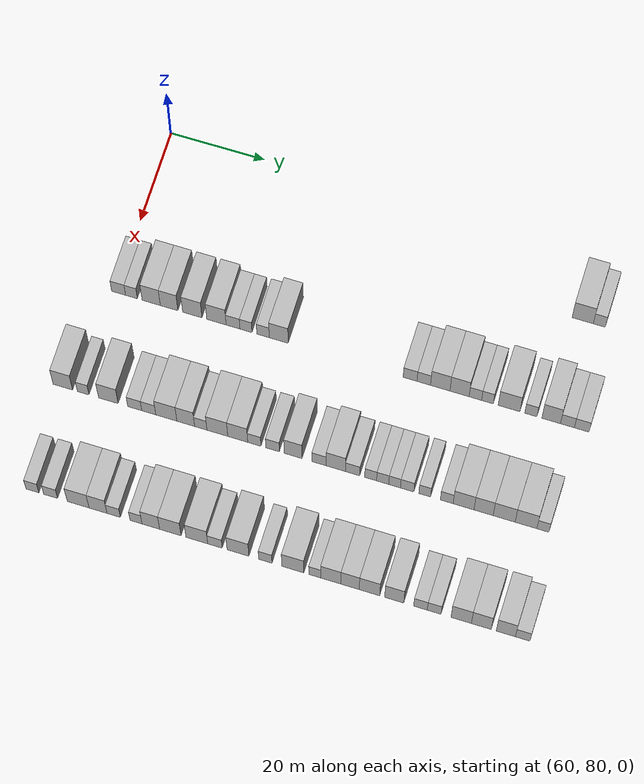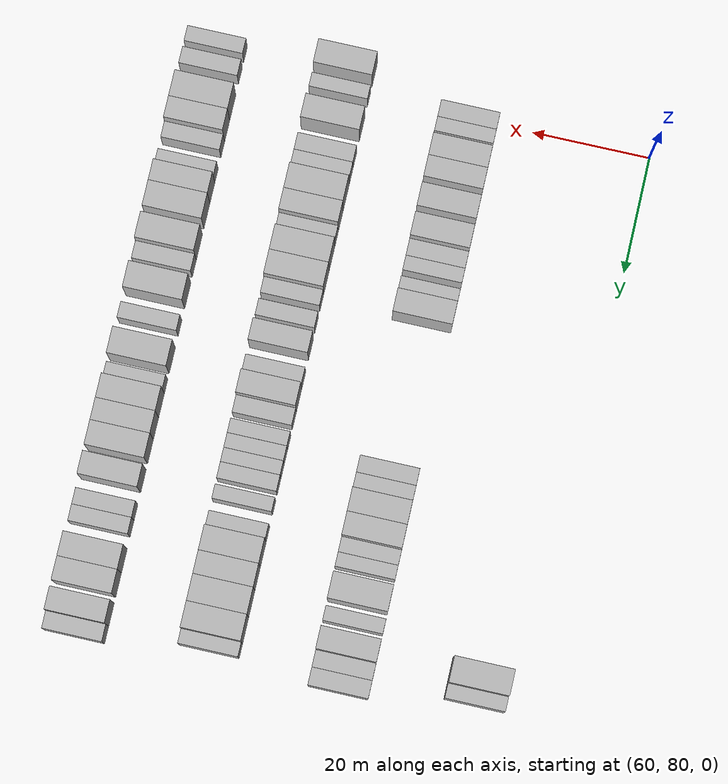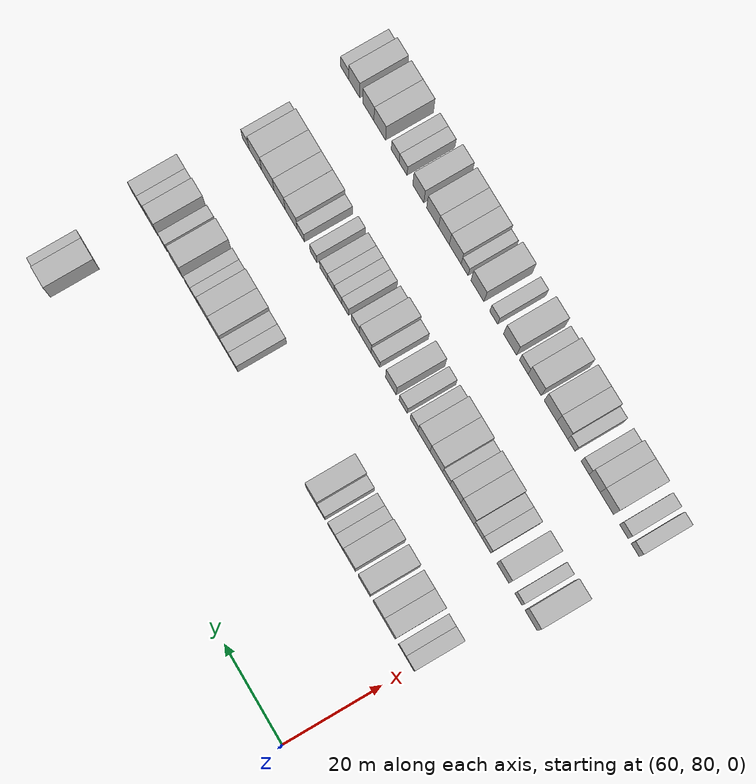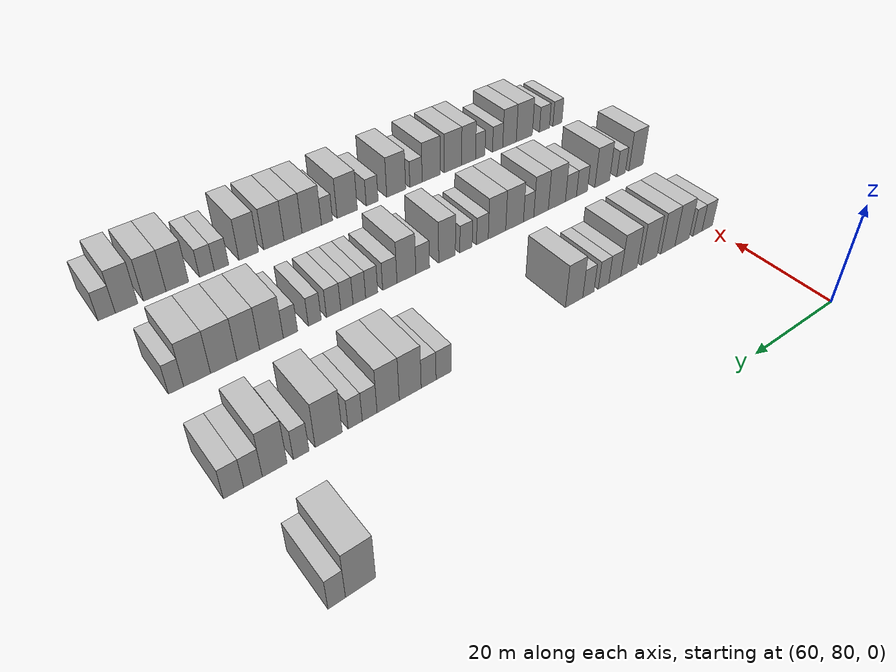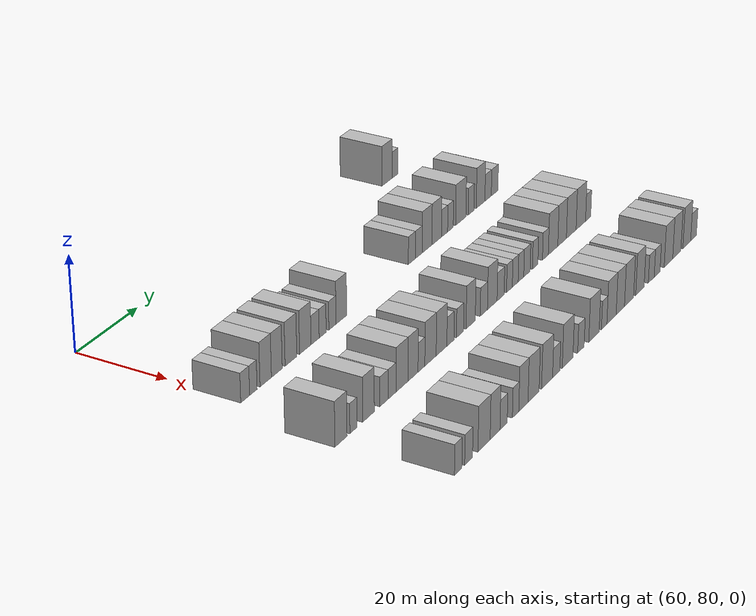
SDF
<sdf version="1.6">
 <world name="default">
  <model name="building_521">
   <static>1</static>
   <pose>69.0000 170.9131 0 0.000000 0.000000 0.000000</pose>
   <link name="link">
    <pose>0 0 4.50 0 0 0</pose>
    <collision name="collision"><geometry><box><size>10.0000 4.3863 9.0000</size></box></geometry></collision>
    <visual name="visual">
     <cast_shadows>0</cast_shadows>
     <geometry><box><size>10.0000 4.3863 9.0000</size></box></geometry>
     <material>
      <script>
       <uri>model://HANNAS_wall/materials/scripts</uri>
       <uri>model://HANNAS_wall/materials/textures</uri>
       <name>vrc/HANNAS_wall</name>
      </script>
     </material>
    </visual>
   </link>
  </model>
  <model name="building_522">
   <static>1</static>
   <pose>69.0000 174.3483 0 0.000000 0.000000 0.000000</pose>
   <link name="link">
    <pose>0 0 3.00 0 0 0</pose>
    <collision name="collision"><geometry><box><size>10.0000 2.4840 6.0000</size></box></geometry></collision>
    <visual name="visual">
     <cast_shadows>0</cast_shadows>
     <geometry><box><size>10.0000 2.4840 6.0000</size></box></geometry>
     <material>
      <script>
       <uri>model://HANNAS_wall/materials/scripts</uri>
       <uri>model://HANNAS_wall/materials/textures</uri>
       <name>vrc/HANNAS_wall</name>
      </script>
     </material>
    </visual>
   </link>
  </model>
  <model name="building_680">
   <static>1</static>
   <pose>91.0000 80.7246 0 0.000000 0.000000 0.000000</pose>
   <link name="link">
    <pose>0 0 3.00 0 0 0</pose>
    <collision name="collision"><geometry><box><size>10.0000 2.9260 6.0000</size></box></geometry></collision>
    <visual name="visual">
     <cast_shadows>0</cast_shadows>
     <geometry><box><size>10.0000 2.9260 6.0000</size></box></geometry>
     <material>
      <script>
       <uri>model://HANNAS_wall/materials/scripts</uri>
       <uri>model://HANNAS_wall/materials/textures</uri>
       <name>vrc/HANNAS_wall</name>
      </script>
     </material>
    </visual>
   </link>
  </model>
  <model name="building_681">
   <static>1</static>
   <pose>91.0000 83.4274 0 0.000000 0.000000 0.000000</pose>
   <link name="link">
    <pose>0 0 3.00 0 0 0</pose>
    <collision name="collision"><geometry><box><size>10.0000 2.4797 6.0000</size></box></geometry></collision>
    <visual name="visual">
     <cast_shadows>0</cast_shadows>
     <geometry><box><size>10.0000 2.4797 6.0000</size></box></geometry>
     <material>
      <script>
       <uri>model://HANNAS_wall/materials/scripts</uri>
       <uri>model://HANNAS_wall/materials/textures</uri>
       <name>vrc/HANNAS_wall</name>
      </script>
     </material>
    </visual>
   </link>
  </model>
  <model name="building_682">
   <static>1</static>
   <pose>91.0000 87.5861 0 0.000000 0.000000 0.000000</pose>
   <link name="link">
    <pose>0 0 4.50 0 0 0</pose>
    <collision name="collision"><geometry><box><size>10.0000 3.8378 9.0000</size></box></geometry></collision>
    <visual name="visual">
     <cast_shadows>0</cast_shadows>
     <geometry><box><size>10.0000 3.8378 9.0000</size></box></geometry>
     <material>
      <script>
       <uri>model://HANNAS_wall/materials/scripts</uri>
       <uri>model://HANNAS_wall/materials/textures</uri>
       <name>vrc/HANNAS_wall</name>
      </script>
     </material>
    </visual>
   </link>
  </model>
  <model name="building_683">
   <static>1</static>
   <pose>91.0000 91.3496 0 0.000000 0.000000 0.000000</pose>
   <link name="link">
    <pose>0 0 4.50 0 0 0</pose>
    <collision name="collision"><geometry><box><size>10.0000 3.6892 9.0000</size></box></geometry></collision>
    <visual name="visual">
     <cast_shadows>0</cast_shadows>
     <geometry><box><size>10.0000 3.6892 9.0000</size></box></geometry>
     <material>
      <script>
       <uri>model://HANNAS_wall/materials/scripts</uri>
       <uri>model://HANNAS_wall/materials/textures</uri>
       <name>vrc/HANNAS_wall</name>
      </script>
     </material>
    </visual>
   </link>
  </model>
  <model name="building_684">
   <static>1</static>
   <pose>91.0000 96.2213 0 0.000000 0.000000 0.000000</pose>
   <link name="link">
    <pose>0 0 4.50 0 0 0</pose>
    <collision name="collision"><geometry><box><size>10.0000 4.0542 9.0000</size></box></geometry></collision>
    <visual name="visual">
     <cast_shadows>0</cast_shadows>
     <geometry><box><size>10.0000 4.0542 9.0000</size></box></geometry>
     <material>
      <script>
       <uri>model://HANNAS_wall/materials/scripts</uri>
       <uri>model://HANNAS_wall/materials/textures</uri>
       <name>vrc/HANNAS_wall</name>
      </script>
     </material>
    </visual>
   </link>
  </model>
  <model name="building_685">
   <static>1</static>
   <pose>91.0000 101.2740 0 0.000000 0.000000 0.000000</pose>
   <link name="link">
    <pose>0 0 4.50 0 0 0</pose>
    <collision name="collision"><geometry><box><size>10.0000 4.0511 9.0000</size></box></geometry></collision>
    <visual name="visual">
     <cast_shadows>0</cast_shadows>
     <geometry><box><size>10.0000 4.0511 9.0000</size></box></geometry>
     <material>
      <script>
       <uri>model://HANNAS_wall/materials/scripts</uri>
       <uri>model://HANNAS_wall/materials/textures</uri>
       <name>vrc/HANNAS_wall</name>
      </script>
     </material>
    </visual>
   </link>
  </model>
  <model name="building_686">
   <static>1</static>
   <pose>91.0000 104.7477 0 0.000000 0.000000 0.000000</pose>
   <link name="link">
    <pose>0 0 3.00 0 0 0</pose>
    <collision name="collision"><geometry><box><size>10.0000 2.8964 6.0000</size></box></geometry></collision>
    <visual name="visual">
     <cast_shadows>0</cast_shadows>
     <geometry><box><size>10.0000 2.8964 6.0000</size></box></geometry>
     <material>
      <script>
       <uri>model://HANNAS_wall/materials/scripts</uri>
       <uri>model://HANNAS_wall/materials/textures</uri>
       <name>vrc/HANNAS_wall</name>
      </script>
     </material>
    </visual>
   </link>
  </model>
  <model name="building_687">
   <static>1</static>
   <pose>91.0000 107.4557 0 0.000000 0.000000 0.000000</pose>
   <link name="link">
    <pose>0 0 3.00 0 0 0</pose>
    <collision name="collision"><geometry><box><size>10.0000 2.5196 6.0000</size></box></geometry></collision>
    <visual name="visual">
     <cast_shadows>0</cast_shadows>
     <geometry><box><size>10.0000 2.5196 6.0000</size></box></geometry>
     <material>
      <script>
       <uri>model://HANNAS_wall/materials/scripts</uri>
       <uri>model://HANNAS_wall/materials/textures</uri>
       <name>vrc/HANNAS_wall</name>
      </script>
     </material>
    </visual>
   </link>
  </model>
  <model name="building_688">
   <static>1</static>
   <pose>91.0000 111.0238 0 0.000000 0.000000 0.000000</pose>
   <link name="link">
    <pose>0 0 3.00 0 0 0</pose>
    <collision name="collision"><geometry><box><size>10.0000 2.6165 6.0000</size></box></geometry></collision>
    <visual name="visual">
     <cast_shadows>0</cast_shadows>
     <geometry><box><size>10.0000 2.6165 6.0000</size></box></geometry>
     <material>
      <script>
       <uri>model://HANNAS_wall/materials/scripts</uri>
       <uri>model://HANNAS_wall/materials/textures</uri>
       <name>vrc/HANNAS_wall</name>
      </script>
     </material>
    </visual>
   </link>
  </model>
  <model name="building_689">
   <static>1</static>
   <pose>91.0000 114.3103 0 0.000000 0.000000 0.000000</pose>
   <link name="link">
    <pose>0 0 4.50 0 0 0</pose>
    <collision name="collision"><geometry><box><size>10.0000 3.9566 9.0000</size></box></geometry></collision>
    <visual name="visual">
     <cast_shadows>0</cast_shadows>
     <geometry><box><size>10.0000 3.9566 9.0000</size></box></geometry>
     <material>
      <script>
       <uri>model://HANNAS_wall/materials/scripts</uri>
       <uri>model://HANNAS_wall/materials/textures</uri>
       <name>vrc/HANNAS_wall</name>
      </script>
     </material>
    </visual>
   </link>
  </model>
  <model name="building_690">
   <static>1</static>
   <pose>91.0000 141.6027 0 0.000000 0.000000 0.000000</pose>
   <link name="link">
    <pose>0 0 3.00 0 0 0</pose>
    <collision name="collision"><geometry><box><size>10.0000 2.8761 6.0000</size></box></geometry></collision>
    <visual name="visual">
     <cast_shadows>0</cast_shadows>
     <geometry><box><size>10.0000 2.8761 6.0000</size></box></geometry>
     <material>
      <script>
       <uri>model://HANNAS_wall/materials/scripts</uri>
       <uri>model://HANNAS_wall/materials/textures</uri>
       <name>vrc/HANNAS_wall</name>
      </script>
     </material>
    </visual>
   </link>
  </model>
  <model name="building_691">
   <static>1</static>
   <pose>91.0000 144.4343 0 0.000000 0.000000 0.000000</pose>
   <link name="link">
    <pose>0 0 3.00 0 0 0</pose>
    <collision name="collision"><geometry><box><size>10.0000 2.7871 6.0000</size></box></geometry></collision>
    <visual name="visual">
     <cast_shadows>0</cast_shadows>
     <geometry><box><size>10.0000 2.7871 6.0000</size></box></geometry>
     <material>
      <script>
       <uri>model://HANNAS_wall/materials/scripts</uri>
       <uri>model://HANNAS_wall/materials/textures</uri>
       <name>vrc/HANNAS_wall</name>
      </script>
     </material>
    </visual>
   </link>
  </model>
  <model name="building_692">
   <static>1</static>
   <pose>91.0000 147.8355 0 0.000000 0.000000 0.000000</pose>
   <link name="link">
    <pose>0 0 4.50 0 0 0</pose>
    <collision name="collision"><geometry><box><size>10.0000 4.0155 9.0000</size></box></geometry></collision>
    <visual name="visual">
     <cast_shadows>0</cast_shadows>
     <geometry><box><size>10.0000 4.0155 9.0000</size></box></geometry>
     <material>
      <script>
       <uri>model://HANNAS_wall/materials/scripts</uri>
       <uri>model://HANNAS_wall/materials/textures</uri>
       <name>vrc/HANNAS_wall</name>
      </script>
     </material>
    </visual>
   </link>
  </model>
  <model name="building_693">
   <static>1</static>
   <pose>91.0000 151.8216 0 0.000000 0.000000 0.000000</pose>
   <link name="link">
    <pose>0 0 4.50 0 0 0</pose>
    <collision name="collision"><geometry><box><size>10.0000 3.9567 9.0000</size></box></geometry></collision>
    <visual name="visual">
     <cast_shadows>0</cast_shadows>
     <geometry><box><size>10.0000 3.9567 9.0000</size></box></geometry>
     <material>
      <script>
       <uri>model://HANNAS_wall/materials/scripts</uri>
       <uri>model://HANNAS_wall/materials/textures</uri>
       <name>vrc/HANNAS_wall</name>
      </script>
     </material>
    </visual>
   </link>
  </model>
  <model name="building_694">
   <static>1</static>
   <pose>91.0000 155.0893 0 0.000000 0.000000 0.000000</pose>
   <link name="link">
    <pose>0 0 3.00 0 0 0</pose>
    <collision name="collision"><geometry><box><size>10.0000 2.5787 6.0000</size></box></geometry></collision>
    <visual name="visual">
     <cast_shadows>0</cast_shadows>
     <geometry><box><size>10.0000 2.5787 6.0000</size></box></geometry>
     <material>
      <script>
       <uri>model://HANNAS_wall/materials/scripts</uri>
       <uri>model://HANNAS_wall/materials/textures</uri>
       <name>vrc/HANNAS_wall</name>
      </script>
     </material>
    </visual>
   </link>
  </model>
  <model name="building_695">
   <static>1</static>
   <pose>91.0000 157.5824 0 0.000000 0.000000 0.000000</pose>
   <link name="link">
    <pose>0 0 3.00 0 0 0</pose>
    <collision name="collision"><geometry><box><size>10.0000 2.4074 6.0000</size></box></geometry></collision>
    <visual name="visual">
     <cast_shadows>0</cast_shadows>
     <geometry><box><size>10.0000 2.4074 6.0000</size></box></geometry>
     <material>
      <script>
       <uri>model://HANNAS_wall/materials/scripts</uri>
       <uri>model://HANNAS_wall/materials/textures</uri>
       <name>vrc/HANNAS_wall</name>
      </script>
     </material>
    </visual>
   </link>
  </model>
  <model name="building_696">
   <static>1</static>
   <pose>91.0000 162.0258 0 0.000000 0.000000 0.000000</pose>
   <link name="link">
    <pose>0 0 4.50 0 0 0</pose>
    <collision name="collision"><geometry><box><size>10.0000 4.4794 9.0000</size></box></geometry></collision>
    <visual name="visual">
     <cast_shadows>0</cast_shadows>
     <geometry><box><size>10.0000 4.4794 9.0000</size></box></geometry>
     <material>
      <script>
       <uri>model://HANNAS_wall/materials/scripts</uri>
       <uri>model://HANNAS_wall/materials/textures</uri>
       <name>vrc/HANNAS_wall</name>
      </script>
     </material>
    </visual>
   </link>
  </model>
  <model name="building_697">
   <static>1</static>
   <pose>91.0000 166.5185 0 0.000000 0.000000 0.000000</pose>
   <link name="link">
    <pose>0 0 3.00 0 0 0</pose>
    <collision name="collision"><geometry><box><size>10.0000 2.5060 6.0000</size></box></geometry></collision>
    <visual name="visual">
     <cast_shadows>0</cast_shadows>
     <geometry><box><size>10.0000 2.5060 6.0000</size></box></geometry>
     <material>
      <script>
       <uri>model://HANNAS_wall/materials/scripts</uri>
       <uri>model://HANNAS_wall/materials/textures</uri>
       <name>vrc/HANNAS_wall</name>
      </script>
     </material>
    </visual>
   </link>
  </model>
  <model name="building_698">
   <static>1</static>
   <pose>91.0000 170.6852 0 0.000000 0.000000 0.000000</pose>
   <link name="link">
    <pose>0 0 4.50 0 0 0</pose>
    <collision name="collision"><geometry><box><size>10.0000 3.8274 9.0000</size></box></geometry></collision>
    <visual name="visual">
     <cast_shadows>0</cast_shadows>
     <geometry><box><size>10.0000 3.8274 9.0000</size></box></geometry>
     <material>
      <script>
       <uri>model://HANNAS_wall/materials/scripts</uri>
       <uri>model://HANNAS_wall/materials/textures</uri>
       <name>vrc/HANNAS_wall</name>
      </script>
     </material>
    </visual>
   </link>
  </model>
  <model name="building_699">
   <static>1</static>
   <pose>91.0000 174.0252 0 0.000000 0.000000 0.000000</pose>
   <link name="link">
    <pose>0 0 3.00 0 0 0</pose>
    <collision name="collision"><geometry><box><size>10.0000 2.8525 6.0000</size></box></geometry></collision>
    <visual name="visual">
     <cast_shadows>0</cast_shadows>
     <geometry><box><size>10.0000 2.8525 6.0000</size></box></geometry>
     <material>
      <script>
       <uri>model://HANNAS_wall/materials/scripts</uri>
       <uri>model://HANNAS_wall/materials/textures</uri>
       <name>vrc/HANNAS_wall</name>
      </script>
     </material>
    </visual>
   </link>
  </model>
  <model name="building_700">
   <static>1</static>
   <pose>91.0000 176.9509 0 0.000000 0.000000 0.000000</pose>
   <link name="link">
    <pose>0 0 3.00 0 0 0</pose>
    <collision name="collision"><geometry><box><size>10.0000 2.9991 6.0000</size></box></geometry></collision>
    <visual name="visual">
     <cast_shadows>0</cast_shadows>
     <geometry><box><size>10.0000 2.9991 6.0000</size></box></geometry>
     <material>
      <script>
       <uri>model://HANNAS_wall/materials/scripts</uri>
       <uri>model://HANNAS_wall/materials/textures</uri>
       <name>vrc/HANNAS_wall</name>
      </script>
     </material>
    </visual>
   </link>
  </model>
  <model name="building_854">
   <static>1</static>
   <pose>113.0000 76.4438 0 0.000000 0.000000 0.000000</pose>
   <link name="link">
    <pose>0 0 4.50 0 0 0</pose>
    <collision name="collision"><geometry><box><size>10.0000 4.0753 9.0000</size></box></geometry></collision>
    <visual name="visual">
     <cast_shadows>0</cast_shadows>
     <geometry><box><size>10.0000 4.0753 9.0000</size></box></geometry>
     <material>
      <script>
       <uri>model://HANNAS_wall/materials/scripts</uri>
       <uri>model://HANNAS_wall/materials/textures</uri>
       <name>vrc/HANNAS_wall</name>
      </script>
     </material>
    </visual>
   </link>
  </model>
  <model name="building_855">
   <static>1</static>
   <pose>113.0000 80.6897 0 0.000000 0.000000 0.000000</pose>
   <link name="link">
    <pose>0 0 3.00 0 0 0</pose>
    <collision name="collision"><geometry><box><size>10.0000 2.4164 6.0000</size></box></geometry></collision>
    <visual name="visual">
     <cast_shadows>0</cast_shadows>
     <geometry><box><size>10.0000 2.4164 6.0000</size></box></geometry>
     <material>
      <script>
       <uri>model://HANNAS_wall/materials/scripts</uri>
       <uri>model://HANNAS_wall/materials/textures</uri>
       <name>vrc/HANNAS_wall</name>
      </script>
     </material>
    </visual>
   </link>
  </model>
  <model name="building_856">
   <static>1</static>
   <pose>113.0000 85.9375 0 0.000000 0.000000 0.000000</pose>
   <link name="link">
    <pose>0 0 4.50 0 0 0</pose>
    <collision name="collision"><geometry><box><size>10.0000 4.0790 9.0000</size></box></geometry></collision>
    <visual name="visual">
     <cast_shadows>0</cast_shadows>
     <geometry><box><size>10.0000 4.0790 9.0000</size></box></geometry>
     <material>
      <script>
       <uri>model://HANNAS_wall/materials/scripts</uri>
       <uri>model://HANNAS_wall/materials/textures</uri>
       <name>vrc/HANNAS_wall</name>
      </script>
     </material>
    </visual>
   </link>
  </model>
  <model name="building_857">
   <static>1</static>
   <pose>113.0000 91.4332 0 0.000000 0.000000 0.000000</pose>
   <link name="link">
    <pose>0 0 3.00 0 0 0</pose>
    <collision name="collision"><geometry><box><size>10.0000 2.9124 6.0000</size></box></geometry></collision>
    <visual name="visual">
     <cast_shadows>0</cast_shadows>
     <geometry><box><size>10.0000 2.9124 6.0000</size></box></geometry>
     <material>
      <script>
       <uri>model://HANNAS_wall/materials/scripts</uri>
       <uri>model://HANNAS_wall/materials/textures</uri>
       <name>vrc/HANNAS_wall</name>
      </script>
     </material>
    </visual>
   </link>
  </model>
  <model name="building_858">
   <static>1</static>
   <pose>113.0000 94.3493 0 0.000000 0.000000 0.000000</pose>
   <link name="link">
    <pose>0 0 3.00 0 0 0</pose>
    <collision name="collision"><geometry><box><size>10.0000 2.9198 6.0000</size></box></geometry></collision>
    <visual name="visual">
     <cast_shadows>0</cast_shadows>
     <geometry><box><size>10.0000 2.9198 6.0000</size></box></geometry>
     <material>
      <script>
       <uri>model://HANNAS_wall/materials/scripts</uri>
       <uri>model://HANNAS_wall/materials/textures</uri>
       <name>vrc/HANNAS_wall</name>
      </script>
     </material>
    </visual>
   </link>
  </model>
  <model name="building_859">
   <static>1</static>
   <pose>113.0000 97.9970 0 0.000000 0.000000 0.000000</pose>
   <link name="link">
    <pose>0 0 4.50 0 0 0</pose>
    <collision name="collision"><geometry><box><size>10.0000 4.3757 9.0000</size></box></geometry></collision>
    <visual name="visual">
     <cast_shadows>0</cast_shadows>
     <geometry><box><size>10.0000 4.3757 9.0000</size></box></geometry>
     <material>
      <script>
       <uri>model://HANNAS_wall/materials/scripts</uri>
       <uri>model://HANNAS_wall/materials/textures</uri>
       <name>vrc/HANNAS_wall</name>
      </script>
     </material>
    </visual>
   </link>
  </model>
  <model name="building_860">
   <static>1</static>
   <pose>113.0000 102.0224 0 0.000000 0.000000 0.000000</pose>
   <link name="link">
    <pose>0 0 4.50 0 0 0</pose>
    <collision name="collision"><geometry><box><size>10.0000 3.6752 9.0000</size></box></geometry></collision>
    <visual name="visual">
     <cast_shadows>0</cast_shadows>
     <geometry><box><size>10.0000 3.6752 9.0000</size></box></geometry>
     <material>
      <script>
       <uri>model://HANNAS_wall/materials/scripts</uri>
       <uri>model://HANNAS_wall/materials/textures</uri>
       <name>vrc/HANNAS_wall</name>
      </script>
     </material>
    </visual>
   </link>
  </model>
  <model name="building_861">
   <static>1</static>
   <pose>113.0000 105.1389 0 0.000000 0.000000 0.000000</pose>
   <link name="link">
    <pose>0 0 3.00 0 0 0</pose>
    <collision name="collision"><geometry><box><size>10.0000 2.5577 6.0000</size></box></geometry></collision>
    <visual name="visual">
     <cast_shadows>0</cast_shadows>
     <geometry><box><size>10.0000 2.5577 6.0000</size></box></geometry>
     <material>
      <script>
       <uri>model://HANNAS_wall/materials/scripts</uri>
       <uri>model://HANNAS_wall/materials/textures</uri>
       <name>vrc/HANNAS_wall</name>
      </script>
     </material>
    </visual>
   </link>
  </model>
  <model name="building_862">
   <static>1</static>
   <pose>113.0000 108.5718 0 0.000000 0.000000 0.000000</pose>
   <link name="link">
    <pose>0 0 4.50 0 0 0</pose>
    <collision name="collision"><geometry><box><size>10.0000 4.3082 9.0000</size></box></geometry></collision>
    <visual name="visual">
     <cast_shadows>0</cast_shadows>
     <geometry><box><size>10.0000 4.3082 9.0000</size></box></geometry>
     <material>
      <script>
       <uri>model://HANNAS_wall/materials/scripts</uri>
       <uri>model://HANNAS_wall/materials/textures</uri>
       <name>vrc/HANNAS_wall</name>
      </script>
     </material>
    </visual>
   </link>
  </model>
  <model name="building_863">
   <static>1</static>
   <pose>113.0000 112.7922 0 0.000000 0.000000 0.000000</pose>
   <link name="link">
    <pose>0 0 4.50 0 0 0</pose>
    <collision name="collision"><geometry><box><size>10.0000 4.1326 9.0000</size></box></geometry></collision>
    <visual name="visual">
     <cast_shadows>0</cast_shadows>
     <geometry><box><size>10.0000 4.1326 9.0000</size></box></geometry>
     <material>
      <script>
       <uri>model://HANNAS_wall/materials/scripts</uri>
       <uri>model://HANNAS_wall/materials/textures</uri>
       <name>vrc/HANNAS_wall</name>
      </script>
     </material>
    </visual>
   </link>
  </model>
  <model name="building_864">
   <static>1</static>
   <pose>113.0000 116.2252 0 0.000000 0.000000 0.000000</pose>
   <link name="link">
    <pose>0 0 3.00 0 0 0</pose>
    <collision name="collision"><geometry><box><size>10.0000 2.7332 6.0000</size></box></geometry></collision>
    <visual name="visual">
     <cast_shadows>0</cast_shadows>
     <geometry><box><size>10.0000 2.7332 6.0000</size></box></geometry>
     <material>
      <script>
       <uri>model://HANNAS_wall/materials/scripts</uri>
       <uri>model://HANNAS_wall/materials/textures</uri>
       <name>vrc/HANNAS_wall</name>
      </script>
     </material>
    </visual>
   </link>
  </model>
  <model name="building_865">
   <static>1</static>
   <pose>113.0000 119.9919 0 0.000000 0.000000 0.000000</pose>
   <link name="link">
    <pose>0 0 3.00 0 0 0</pose>
    <collision name="collision"><geometry><box><size>10.0000 2.8003 6.0000</size></box></geometry></collision>
    <visual name="visual">
     <cast_shadows>0</cast_shadows>
     <geometry><box><size>10.0000 2.8003 6.0000</size></box></geometry>
     <material>
      <script>
       <uri>model://HANNAS_wall/materials/scripts</uri>
       <uri>model://HANNAS_wall/materials/textures</uri>
       <name>vrc/HANNAS_wall</name>
      </script>
     </material>
    </visual>
   </link>
  </model>
  <model name="building_866">
   <static>1</static>
   <pose>113.0000 124.2381 0 0.000000 0.000000 0.000000</pose>
   <link name="link">
    <pose>0 0 4.50 0 0 0</pose>
    <collision name="collision"><geometry><box><size>10.0000 3.6920 9.0000</size></box></geometry></collision>
    <visual name="visual">
     <cast_shadows>0</cast_shadows>
     <geometry><box><size>10.0000 3.6920 9.0000</size></box></geometry>
     <material>
      <script>
       <uri>model://HANNAS_wall/materials/scripts</uri>
       <uri>model://HANNAS_wall/materials/textures</uri>
       <name>vrc/HANNAS_wall</name>
      </script>
     </material>
    </visual>
   </link>
  </model>
  <model name="building_867">
   <static>1</static>
   <pose>113.0000 129.5550 0 0.000000 0.000000 0.000000</pose>
   <link name="link">
    <pose>0 0 3.00 0 0 0</pose>
    <collision name="collision"><geometry><box><size>10.0000 2.9419 6.0000</size></box></geometry></collision>
    <visual name="visual">
     <cast_shadows>0</cast_shadows>
     <geometry><box><size>10.0000 2.9419 6.0000</size></box></geometry>
     <material>
      <script>
       <uri>model://HANNAS_wall/materials/scripts</uri>
       <uri>model://HANNAS_wall/materials/textures</uri>
       <name>vrc/HANNAS_wall</name>
      </script>
     </material>
    </visual>
   </link>
  </model>
  <model name="building_868">
   <static>1</static>
   <pose>113.0000 133.0078 0 0.000000 0.000000 0.000000</pose>
   <link name="link">
    <pose>0 0 4.50 0 0 0</pose>
    <collision name="collision"><geometry><box><size>10.0000 3.9637 9.0000</size></box></geometry></collision>
    <visual name="visual">
     <cast_shadows>0</cast_shadows>
     <geometry><box><size>10.0000 3.9637 9.0000</size></box></geometry>
     <material>
      <script>
       <uri>model://HANNAS_wall/materials/scripts</uri>
       <uri>model://HANNAS_wall/materials/textures</uri>
       <name>vrc/HANNAS_wall</name>
      </script>
     </material>
    </visual>
   </link>
  </model>
  <model name="building_869">
   <static>1</static>
   <pose>113.0000 136.4669 0 0.000000 0.000000 0.000000</pose>
   <link name="link">
    <pose>0 0 3.00 0 0 0</pose>
    <collision name="collision"><geometry><box><size>10.0000 2.9543 6.0000</size></box></geometry></collision>
    <visual name="visual">
     <cast_shadows>0</cast_shadows>
     <geometry><box><size>10.0000 2.9543 6.0000</size></box></geometry>
     <material>
      <script>
       <uri>model://HANNAS_wall/materials/scripts</uri>
       <uri>model://HANNAS_wall/materials/textures</uri>
       <name>vrc/HANNAS_wall</name>
      </script>
     </material>
    </visual>
   </link>
  </model>
  <model name="building_870">
   <static>1</static>
   <pose>113.0000 140.1662 0 0.000000 0.000000 0.000000</pose>
   <link name="link">
    <pose>0 0 3.00 0 0 0</pose>
    <collision name="collision"><geometry><box><size>10.0000 2.4443 6.0000</size></box></geometry></collision>
    <visual name="visual">
     <cast_shadows>0</cast_shadows>
     <geometry><box><size>10.0000 2.4443 6.0000</size></box></geometry>
     <material>
      <script>
       <uri>model://HANNAS_wall/materials/scripts</uri>
       <uri>model://HANNAS_wall/materials/textures</uri>
       <name>vrc/HANNAS_wall</name>
      </script>
     </material>
    </visual>
   </link>
  </model>
  <model name="building_871">
   <static>1</static>
   <pose>113.0000 142.6330 0 0.000000 0.000000 0.000000</pose>
   <link name="link">
    <pose>0 0 3.00 0 0 0</pose>
    <collision name="collision"><geometry><box><size>10.0000 2.4892 6.0000</size></box></geometry></collision>
    <visual name="visual">
     <cast_shadows>0</cast_shadows>
     <geometry><box><size>10.0000 2.4892 6.0000</size></box></geometry>
     <material>
      <script>
       <uri>model://HANNAS_wall/materials/scripts</uri>
       <uri>model://HANNAS_wall/materials/textures</uri>
       <name>vrc/HANNAS_wall</name>
      </script>
     </material>
    </visual>
   </link>
  </model>
  <model name="building_872">
   <static>1</static>
   <pose>113.0000 145.0780 0 0.000000 0.000000 0.000000</pose>
   <link name="link">
    <pose>0 0 3.00 0 0 0</pose>
    <collision name="collision"><geometry><box><size>10.0000 2.4010 6.0000</size></box></geometry></collision>
    <visual name="visual">
     <cast_shadows>0</cast_shadows>
     <geometry><box><size>10.0000 2.4010 6.0000</size></box></geometry>
     <material>
      <script>
       <uri>model://HANNAS_wall/materials/scripts</uri>
       <uri>model://HANNAS_wall/materials/textures</uri>
       <name>vrc/HANNAS_wall</name>
      </script>
     </material>
    </visual>
   </link>
  </model>
  <model name="building_873">
   <static>1</static>
   <pose>113.0000 147.6538 0 0.000000 0.000000 0.000000</pose>
   <link name="link">
    <pose>0 0 3.00 0 0 0</pose>
    <collision name="collision"><geometry><box><size>10.0000 2.7506 6.0000</size></box></geometry></collision>
    <visual name="visual">
     <cast_shadows>0</cast_shadows>
     <geometry><box><size>10.0000 2.7506 6.0000</size></box></geometry>
     <material>
      <script>
       <uri>model://HANNAS_wall/materials/scripts</uri>
       <uri>model://HANNAS_wall/materials/textures</uri>
       <name>vrc/HANNAS_wall</name>
      </script>
     </material>
    </visual>
   </link>
  </model>
  <model name="building_874">
   <static>1</static>
   <pose>113.0000 151.2354 0 0.000000 0.000000 0.000000</pose>
   <link name="link">
    <pose>0 0 3.00 0 0 0</pose>
    <collision name="collision"><geometry><box><size>10.0000 2.4126 6.0000</size></box></geometry></collision>
    <visual name="visual">
     <cast_shadows>0</cast_shadows>
     <geometry><box><size>10.0000 2.4126 6.0000</size></box></geometry>
     <material>
      <script>
       <uri>model://HANNAS_wall/materials/scripts</uri>
       <uri>model://HANNAS_wall/materials/textures</uri>
       <name>vrc/HANNAS_wall</name>
      </script>
     </material>
    </visual>
   </link>
  </model>
  <model name="building_875">
   <static>1</static>
   <pose>113.0000 155.7474 0 0.000000 0.000000 0.000000</pose>
   <link name="link">
    <pose>0 0 3.00 0 0 0</pose>
    <collision name="collision"><geometry><box><size>10.0000 2.6115 6.0000</size></box></geometry></collision>
    <visual name="visual">
     <cast_shadows>0</cast_shadows>
     <geometry><box><size>10.0000 2.6115 6.0000</size></box></geometry>
     <material>
      <script>
       <uri>model://HANNAS_wall/materials/scripts</uri>
       <uri>model://HANNAS_wall/materials/textures</uri>
       <name>vrc/HANNAS_wall</name>
      </script>
     </material>
    </visual>
   </link>
  </model>
  <model name="building_876">
   <static>1</static>
   <pose>113.0000 159.1783 0 0.000000 0.000000 0.000000</pose>
   <link name="link">
    <pose>0 0 4.50 0 0 0</pose>
    <collision name="collision"><geometry><box><size>10.0000 4.2504 9.0000</size></box></geometry></collision>
    <visual name="visual">
     <cast_shadows>0</cast_shadows>
     <geometry><box><size>10.0000 4.2504 9.0000</size></box></geometry>
     <material>
      <script>
       <uri>model://HANNAS_wall/materials/scripts</uri>
       <uri>model://HANNAS_wall/materials/textures</uri>
       <name>vrc/HANNAS_wall</name>
      </script>
     </material>
    </visual>
   </link>
  </model>
  <model name="building_877">
   <static>1</static>
   <pose>113.0000 163.2585 0 0.000000 0.000000 0.000000</pose>
   <link name="link">
    <pose>0 0 4.50 0 0 0</pose>
    <collision name="collision"><geometry><box><size>10.0000 3.9098 9.0000</size></box></geometry></collision>
    <visual name="visual">
     <cast_shadows>0</cast_shadows>
     <geometry><box><size>10.0000 3.9098 9.0000</size></box></geometry>
     <material>
      <script>
       <uri>model://HANNAS_wall/materials/scripts</uri>
       <uri>model://HANNAS_wall/materials/textures</uri>
       <name>vrc/HANNAS_wall</name>
      </script>
     </material>
    </visual>
   </link>
  </model>
  <model name="building_878">
   <static>1</static>
   <pose>113.0000 167.4522 0 0.000000 0.000000 0.000000</pose>
   <link name="link">
    <pose>0 0 4.50 0 0 0</pose>
    <collision name="collision"><geometry><box><size>10.0000 4.4778 9.0000</size></box></geometry></collision>
    <visual name="visual">
     <cast_shadows>0</cast_shadows>
     <geometry><box><size>10.0000 4.4778 9.0000</size></box></geometry>
     <material>
      <script>
       <uri>model://HANNAS_wall/materials/scripts</uri>
       <uri>model://HANNAS_wall/materials/textures</uri>
       <name>vrc/HANNAS_wall</name>
      </script>
     </material>
    </visual>
   </link>
  </model>
  <model name="building_879">
   <static>1</static>
   <pose>113.0000 171.8982 0 0.000000 0.000000 0.000000</pose>
   <link name="link">
    <pose>0 0 4.50 0 0 0</pose>
    <collision name="collision"><geometry><box><size>10.0000 4.4141 9.0000</size></box></geometry></collision>
    <visual name="visual">
     <cast_shadows>0</cast_shadows>
     <geometry><box><size>10.0000 4.4141 9.0000</size></box></geometry>
     <material>
      <script>
       <uri>model://HANNAS_wall/materials/scripts</uri>
       <uri>model://HANNAS_wall/materials/textures</uri>
       <name>vrc/HANNAS_wall</name>
      </script>
     </material>
    </visual>
   </link>
  </model>
  <model name="building_880">
   <static>1</static>
   <pose>113.0000 175.3328 0 0.000000 0.000000 0.000000</pose>
   <link name="link">
    <pose>0 0 3.00 0 0 0</pose>
    <collision name="collision"><geometry><box><size>10.0000 2.4552 6.0000</size></box></geometry></collision>
    <visual name="visual">
     <cast_shadows>0</cast_shadows>
     <geometry><box><size>10.0000 2.4552 6.0000</size></box></geometry>
     <material>
      <script>
       <uri>model://HANNAS_wall/materials/scripts</uri>
       <uri>model://HANNAS_wall/materials/textures</uri>
       <name>vrc/HANNAS_wall</name>
      </script>
     </material>
    </visual>
   </link>
  </model>
  <model name="building_1040">
   <static>1</static>
   <pose>135.0000 77.6308 0 0.000000 0.000000 0.000000</pose>
   <link name="link">
    <pose>0 0 3.00 0 0 0</pose>
    <collision name="collision"><geometry><box><size>10.0000 2.6600 6.0000</size></box></geometry></collision>
    <visual name="visual">
     <cast_shadows>0</cast_shadows>
     <geometry><box><size>10.0000 2.6600 6.0000</size></box></geometry>
     <material>
      <script>
       <uri>model://HANNAS_wall/materials/scripts</uri>
       <uri>model://HANNAS_wall/materials/textures</uri>
       <name>vrc/HANNAS_wall</name>
      </script>
     </material>
    </visual>
   </link>
  </model>
  <model name="building_1041">
   <static>1</static>
   <pose>135.0000 81.3956 0 0.000000 0.000000 0.000000</pose>
   <link name="link">
    <pose>0 0 3.00 0 0 0</pose>
    <collision name="collision"><geometry><box><size>10.0000 2.8696 6.0000</size></box></geometry></collision>
    <visual name="visual">
     <cast_shadows>0</cast_shadows>
     <geometry><box><size>10.0000 2.8696 6.0000</size></box></geometry>
     <material>
      <script>
       <uri>model://HANNAS_wall/materials/scripts</uri>
       <uri>model://HANNAS_wall/materials/textures</uri>
       <name>vrc/HANNAS_wall</name>
      </script>
     </material>
    </visual>
   </link>
  </model>
  <model name="building_1042">
   <static>1</static>
   <pose>135.0000 87.0781 0 0.000000 0.000000 0.000000</pose>
   <link name="link">
    <pose>0 0 4.50 0 0 0</pose>
    <collision name="collision"><geometry><box><size>10.0000 4.4953 9.0000</size></box></geometry></collision>
    <visual name="visual">
     <cast_shadows>0</cast_shadows>
     <geometry><box><size>10.0000 4.4953 9.0000</size></box></geometry>
     <material>
      <script>
       <uri>model://HANNAS_wall/materials/scripts</uri>
       <uri>model://HANNAS_wall/materials/textures</uri>
       <name>vrc/HANNAS_wall</name>
      </script>
     </material>
    </visual>
   </link>
  </model>
  <model name="building_1043">
   <static>1</static>
   <pose>135.0000 91.1770 0 0.000000 0.000000 0.000000</pose>
   <link name="link">
    <pose>0 0 4.50 0 0 0</pose>
    <collision name="collision"><geometry><box><size>10.0000 3.7025 9.0000</size></box></geometry></collision>
    <visual name="visual">
     <cast_shadows>0</cast_shadows>
     <geometry><box><size>10.0000 3.7025 9.0000</size></box></geometry>
     <material>
      <script>
       <uri>model://HANNAS_wall/materials/scripts</uri>
       <uri>model://HANNAS_wall/materials/textures</uri>
       <name>vrc/HANNAS_wall</name>
      </script>
     </material>
    </visual>
   </link>
  </model>
  <model name="building_1044">
   <static>1</static>
   <pose>135.0000 94.4023 0 0.000000 0.000000 0.000000</pose>
   <link name="link">
    <pose>0 0 3.00 0 0 0</pose>
    <collision name="collision"><geometry><box><size>10.0000 2.7481 6.0000</size></box></geometry></collision>
    <visual name="visual">
     <cast_shadows>0</cast_shadows>
     <geometry><box><size>10.0000 2.7481 6.0000</size></box></geometry>
     <material>
      <script>
       <uri>model://HANNAS_wall/materials/scripts</uri>
       <uri>model://HANNAS_wall/materials/textures</uri>
       <name>vrc/HANNAS_wall</name>
      </script>
     </material>
    </visual>
   </link>
  </model>
  <model name="building_1045">
   <static>1</static>
   <pose>135.0000 99.0085 0 0.000000 0.000000 0.000000</pose>
   <link name="link">
    <pose>0 0 3.00 0 0 0</pose>
    <collision name="collision"><geometry><box><size>10.0000 2.4642 6.0000</size></box></geometry></collision>
    <visual name="visual">
     <cast_shadows>0</cast_shadows>
     <geometry><box><size>10.0000 2.4642 6.0000</size></box></geometry>
     <material>
      <script>
       <uri>model://HANNAS_wall/materials/scripts</uri>
       <uri>model://HANNAS_wall/materials/textures</uri>
       <name>vrc/HANNAS_wall</name>
      </script>
     </material>
    </visual>
   </link>
  </model>
  <model name="building_1046">
   <static>1</static>
   <pose>135.0000 102.0491 0 0.000000 0.000000 0.000000</pose>
   <link name="link">
    <pose>0 0 4.50 0 0 0</pose>
    <collision name="collision"><geometry><box><size>10.0000 3.6171 9.0000</size></box></geometry></collision>
    <visual name="visual">
     <cast_shadows>0</cast_shadows>
     <geometry><box><size>10.0000 3.6171 9.0000</size></box></geometry>
     <material>
      <script>
       <uri>model://HANNAS_wall/materials/scripts</uri>
       <uri>model://HANNAS_wall/materials/textures</uri>
       <name>vrc/HANNAS_wall</name>
      </script>
     </material>
    </visual>
   </link>
  </model>
  <model name="building_1047">
   <static>1</static>
   <pose>135.0000 106.0532 0 0.000000 0.000000 0.000000</pose>
   <link name="link">
    <pose>0 0 4.50 0 0 0</pose>
    <collision name="collision"><geometry><box><size>10.0000 4.3911 9.0000</size></box></geometry></collision>
    <visual name="visual">
     <cast_shadows>0</cast_shadows>
     <geometry><box><size>10.0000 4.3911 9.0000</size></box></geometry>
     <material>
      <script>
       <uri>model://HANNAS_wall/materials/scripts</uri>
       <uri>model://HANNAS_wall/materials/textures</uri>
       <name>vrc/HANNAS_wall</name>
      </script>
     </material>
    </visual>
   </link>
  </model>
  <model name="building_1048">
   <static>1</static>
   <pose>135.0000 111.4750 0 0.000000 0.000000 0.000000</pose>
   <link name="link">
    <pose>0 0 4.50 0 0 0</pose>
    <collision name="collision"><geometry><box><size>10.0000 4.4526 9.0000</size></box></geometry></collision>
    <visual name="visual">
     <cast_shadows>0</cast_shadows>
     <geometry><box><size>10.0000 4.4526 9.0000</size></box></geometry>
     <material>
      <script>
       <uri>model://HANNAS_wall/materials/scripts</uri>
       <uri>model://HANNAS_wall/materials/textures</uri>
       <name>vrc/HANNAS_wall</name>
      </script>
     </material>
    </visual>
   </link>
  </model>
  <model name="building_1049">
   <static>1</static>
   <pose>135.0000 115.1899 0 0.000000 0.000000 0.000000</pose>
   <link name="link">
    <pose>0 0 3.00 0 0 0</pose>
    <collision name="collision"><geometry><box><size>10.0000 2.9773 6.0000</size></box></geometry></collision>
    <visual name="visual">
     <cast_shadows>0</cast_shadows>
     <geometry><box><size>10.0000 2.9773 6.0000</size></box></geometry>
     <material>
      <script>
       <uri>model://HANNAS_wall/materials/scripts</uri>
       <uri>model://HANNAS_wall/materials/textures</uri>
       <name>vrc/HANNAS_wall</name>
      </script>
     </material>
    </visual>
   </link>
  </model>
  <model name="building_1050">
   <static>1</static>
   <pose>135.0000 119.9051 0 0.000000 0.000000 0.000000</pose>
   <link name="link">
    <pose>0 0 4.50 0 0 0</pose>
    <collision name="collision"><geometry><box><size>10.0000 4.4530 9.0000</size></box></geometry></collision>
    <visual name="visual">
     <cast_shadows>0</cast_shadows>
     <geometry><box><size>10.0000 4.4530 9.0000</size></box></geometry>
     <material>
      <script>
       <uri>model://HANNAS_wall/materials/scripts</uri>
       <uri>model://HANNAS_wall/materials/textures</uri>
       <name>vrc/HANNAS_wall</name>
      </script>
     </material>
    </visual>
   </link>
  </model>
  <model name="building_1051">
   <static>1</static>
   <pose>135.0000 125.4936 0 0.000000 0.000000 0.000000</pose>
   <link name="link">
    <pose>0 0 3.00 0 0 0</pose>
    <collision name="collision"><geometry><box><size>10.0000 2.7240 6.0000</size></box></geometry></collision>
    <visual name="visual">
     <cast_shadows>0</cast_shadows>
     <geometry><box><size>10.0000 2.7240 6.0000</size></box></geometry>
     <material>
      <script>
       <uri>model://HANNAS_wall/materials/scripts</uri>
       <uri>model://HANNAS_wall/materials/textures</uri>
       <name>vrc/HANNAS_wall</name>
      </script>
     </material>
    </visual>
   </link>
  </model>
  <model name="building_1052">
   <static>1</static>
   <pose>135.0000 131.0971 0 0.000000 0.000000 0.000000</pose>
   <link name="link">
    <pose>0 0 4.50 0 0 0</pose>
    <collision name="collision"><geometry><box><size>10.0000 4.4830 9.0000</size></box></geometry></collision>
    <visual name="visual">
     <cast_shadows>0</cast_shadows>
     <geometry><box><size>10.0000 4.4830 9.0000</size></box></geometry>
     <material>
      <script>
       <uri>model://HANNAS_wall/materials/scripts</uri>
       <uri>model://HANNAS_wall/materials/textures</uri>
       <name>vrc/HANNAS_wall</name>
      </script>
     </material>
    </visual>
   </link>
  </model>
  <model name="building_1053">
   <static>1</static>
   <pose>135.0000 135.5402 0 0.000000 0.000000 0.000000</pose>
   <link name="link">
    <pose>0 0 3.00 0 0 0</pose>
    <collision name="collision"><geometry><box><size>10.0000 2.4032 6.0000</size></box></geometry></collision>
    <visual name="visual">
     <cast_shadows>0</cast_shadows>
     <geometry><box><size>10.0000 2.4032 6.0000</size></box></geometry>
     <material>
      <script>
       <uri>model://HANNAS_wall/materials/scripts</uri>
       <uri>model://HANNAS_wall/materials/textures</uri>
       <name>vrc/HANNAS_wall</name>
      </script>
     </material>
    </visual>
   </link>
  </model>
  <model name="building_1054">
   <static>1</static>
   <pose>135.0000 138.7979 0 0.000000 0.000000 0.000000</pose>
   <link name="link">
    <pose>0 0 4.50 0 0 0</pose>
    <collision name="collision"><geometry><box><size>10.0000 4.1123 9.0000</size></box></geometry></collision>
    <visual name="visual">
     <cast_shadows>0</cast_shadows>
     <geometry><box><size>10.0000 4.1123 9.0000</size></box></geometry>
     <material>
      <script>
       <uri>model://HANNAS_wall/materials/scripts</uri>
       <uri>model://HANNAS_wall/materials/textures</uri>
       <name>vrc/HANNAS_wall</name>
      </script>
     </material>
    </visual>
   </link>
  </model>
  <model name="building_1055">
   <static>1</static>
   <pose>135.0000 142.7282 0 0.000000 0.000000 0.000000</pose>
   <link name="link">
    <pose>0 0 4.50 0 0 0</pose>
    <collision name="collision"><geometry><box><size>10.0000 3.7484 9.0000</size></box></geometry></collision>
    <visual name="visual">
     <cast_shadows>0</cast_shadows>
     <geometry><box><size>10.0000 3.7484 9.0000</size></box></geometry>
     <material>
      <script>
       <uri>model://HANNAS_wall/materials/scripts</uri>
       <uri>model://HANNAS_wall/materials/textures</uri>
       <name>vrc/HANNAS_wall</name>
      </script>
     </material>
    </visual>
   </link>
  </model>
  <model name="building_1056">
   <static>1</static>
   <pose>135.0000 146.6782 0 0.000000 0.000000 0.000000</pose>
   <link name="link">
    <pose>0 0 4.50 0 0 0</pose>
    <collision name="collision"><geometry><box><size>10.0000 4.1515 9.0000</size></box></geometry></collision>
    <visual name="visual">
     <cast_shadows>0</cast_shadows>
     <geometry><box><size>10.0000 4.1515 9.0000</size></box></geometry>
     <material>
      <script>
       <uri>model://HANNAS_wall/materials/scripts</uri>
       <uri>model://HANNAS_wall/materials/textures</uri>
       <name>vrc/HANNAS_wall</name>
      </script>
     </material>
    </visual>
   </link>
  </model>
  <model name="building_1057">
   <static>1</static>
   <pose>135.0000 151.6882 0 0.000000 0.000000 0.000000</pose>
   <link name="link">
    <pose>0 0 4.50 0 0 0</pose>
    <collision name="collision"><geometry><box><size>10.0000 3.8685 9.0000</size></box></geometry></collision>
    <visual name="visual">
     <cast_shadows>0</cast_shadows>
     <geometry><box><size>10.0000 3.8685 9.0000</size></box></geometry>
     <material>
      <script>
       <uri>model://HANNAS_wall/materials/scripts</uri>
       <uri>model://HANNAS_wall/materials/textures</uri>
       <name>vrc/HANNAS_wall</name>
      </script>
     </material>
    </visual>
   </link>
  </model>
  <model name="building_1058">
   <static>1</static>
   <pose>135.0000 157.0022 0 0.000000 0.000000 0.000000</pose>
   <link name="link">
    <pose>0 0 3.00 0 0 0</pose>
    <collision name="collision"><geometry><box><size>10.0000 2.7595 6.0000</size></box></geometry></collision>
    <visual name="visual">
     <cast_shadows>0</cast_shadows>
     <geometry><box><size>10.0000 2.7595 6.0000</size></box></geometry>
     <material>
      <script>
       <uri>model://HANNAS_wall/materials/scripts</uri>
       <uri>model://HANNAS_wall/materials/textures</uri>
       <name>vrc/HANNAS_wall</name>
      </script>
     </material>
    </visual>
   </link>
  </model>
  <model name="building_1059">
   <static>1</static>
   <pose>135.0000 159.7699 0 0.000000 0.000000 0.000000</pose>
   <link name="link">
    <pose>0 0 3.00 0 0 0</pose>
    <collision name="collision"><geometry><box><size>10.0000 2.7758 6.0000</size></box></geometry></collision>
    <visual name="visual">
     <cast_shadows>0</cast_shadows>
     <geometry><box><size>10.0000 2.7758 6.0000</size></box></geometry>
     <material>
      <script>
       <uri>model://HANNAS_wall/materials/scripts</uri>
       <uri>model://HANNAS_wall/materials/textures</uri>
       <name>vrc/HANNAS_wall</name>
      </script>
     </material>
    </visual>
   </link>
  </model>
  <model name="building_1060">
   <static>1</static>
   <pose>135.0000 165.2197 0 0.000000 0.000000 0.000000</pose>
   <link name="link">
    <pose>0 0 4.50 0 0 0</pose>
    <collision name="collision"><geometry><box><size>10.0000 4.1238 9.0000</size></box></geometry></collision>
    <visual name="visual">
     <cast_shadows>0</cast_shadows>
     <geometry><box><size>10.0000 4.1238 9.0000</size></box></geometry>
     <material>
      <script>
       <uri>model://HANNAS_wall/materials/scripts</uri>
       <uri>model://HANNAS_wall/materials/textures</uri>
       <name>vrc/HANNAS_wall</name>
      </script>
     </material>
    </visual>
   </link>
  </model>
  <model name="building_1061">
   <static>1</static>
   <pose>135.0000 169.2811 0 0.000000 0.000000 0.000000</pose>
   <link name="link">
    <pose>0 0 4.50 0 0 0</pose>
    <collision name="collision"><geometry><box><size>10.0000 3.9991 9.0000</size></box></geometry></collision>
    <visual name="visual">
     <cast_shadows>0</cast_shadows>
     <geometry><box><size>10.0000 3.9991 9.0000</size></box></geometry>
     <material>
      <script>
       <uri>model://HANNAS_wall/materials/scripts</uri>
       <uri>model://HANNAS_wall/materials/textures</uri>
       <name>vrc/HANNAS_wall</name>
      </script>
     </material>
    </visual>
   </link>
  </model>
  <model name="building_1062">
   <static>1</static>
   <pose>135.0000 174.2146 0 0.000000 0.000000 0.000000</pose>
   <link name="link">
    <pose>0 0 4.50 0 0 0</pose>
    <collision name="collision"><geometry><box><size>10.0000 3.8679 9.0000</size></box></geometry></collision>
    <visual name="visual">
     <cast_shadows>0</cast_shadows>
     <geometry><box><size>10.0000 3.8679 9.0000</size></box></geometry>
     <material>
      <script>
       <uri>model://HANNAS_wall/materials/scripts</uri>
       <uri>model://HANNAS_wall/materials/textures</uri>
       <name>vrc/HANNAS_wall</name>
      </script>
     </material>
    </visual>
   </link>
  </model>
  <model name="building_1063">
   <static>1</static>
   <pose>135.0000 177.6124 0 0.000000 0.000000 0.000000</pose>
   <link name="link">
    <pose>0 0 3.00 0 0 0</pose>
    <collision name="collision"><geometry><box><size>10.0000 2.9278 6.0000</size></box></geometry></collision>
    <visual name="visual">
     <cast_shadows>0</cast_shadows>
     <geometry><box><size>10.0000 2.9278 6.0000</size></box></geometry>
     <material>
      <script>
       <uri>model://HANNAS_wall/materials/scripts</uri>
       <uri>model://HANNAS_wall/materials/textures</uri>
       <name>vrc/HANNAS_wall</name>
      </script>
     </material>
    </visual>
   </link>
  </model>
 </world>
</sdf>
